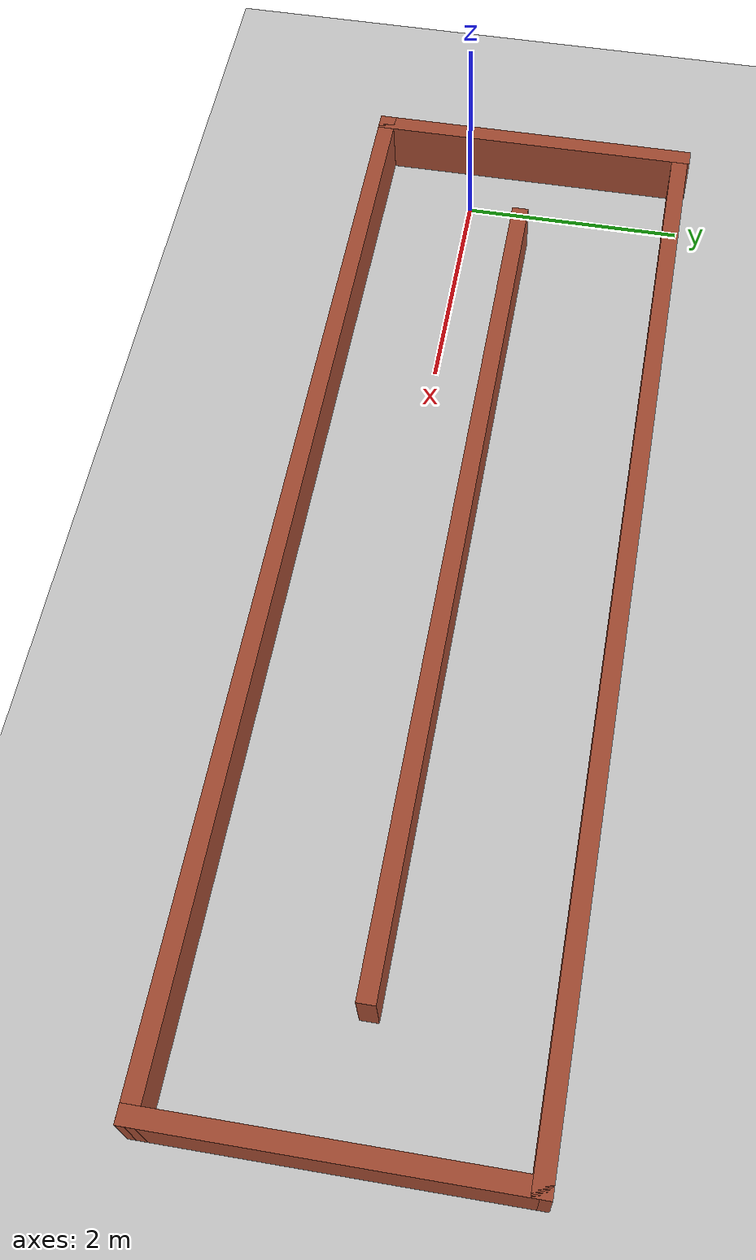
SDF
<sdf version="1.7">
 <world name="default">
  <light name="sun" type="directional">
   <pose>0 0 10 0 -0 0</pose>
   <diffuse>0.8 0.8 0.8 1</diffuse>
   <specular>0.2 0.2 0.2 1</specular>
   <attenuation>
    <range>1000</range>
    <constant>0.9</constant>
    <linear>0.01</linear>
    <quadratic>0.001</quadratic>
   </attenuation>
   <direction>-0.5 0.1 -0.9</direction>
   <spot><inner_angle>0</inner_angle><outer_angle>0</outer_angle><falloff>0</falloff></spot>
  </light>
  <model name="ground_plane">
   <static>1</static>
   <link name="link">
    <collision name="collision">
     <geometry><plane><normal>0 0 1</normal><size>100 100</size></plane></geometry>
     <surface>
      <contact><collide_bitmask>65535</collide_bitmask></contact>
      <friction><ode><mu>100</mu><mu2>50</mu2></ode></friction>
     </surface>
    </collision>
    <visual name="visual">
     <cast_shadows>0</cast_shadows>
     <geometry><plane><normal>0 0 1</normal><size>100 100</size></plane></geometry>
     <material>
      <script><uri>file://media/materials/scripts/gazebo.material</uri><name>Gazebo/Grey</name></script>
     </material>
    </visual>
   </link>
  </model>
  <gravity>0 0 -9.8</gravity>
  <magnetic_field>6e-06 2.3e-05 -4.2e-05</magnetic_field>
  <atmosphere type="adiabatic"/>
  <physics type="ode">
   <max_step_size>0.001</max_step_size>
   <real_time_factor>1</real_time_factor>
   <real_time_update_rate>1000</real_time_update_rate>
  </physics>
  <scene><ambient>0.4 0.4 0.4 1</ambient><background>0.7 0.7 0.7 1</background><shadows>1</shadows></scene>
  <spherical_coordinates>
   <surface_model>EARTH_WGS84</surface_model>
   <latitude_deg>0</latitude_deg>
   <longitude_deg>0</longitude_deg>
   <elevation>0</elevation>
   <heading_deg>0</heading_deg>
  </spherical_coordinates>
  <model name="double_corrid">
   <pose>4.22607 0.001268 0 0 -0 0</pose>
   <link name="Wall_27">
    <collision name="Wall_27_Collision">
     <geometry><box><size>2.99958 0.15 0.5</size></box></geometry>
     <pose>0 0 0.25 0 -0 0</pose>
    </collision>
    <visual name="Wall_27_Visual">
     <pose>0 0 0.25 0 -0 0</pose>
     <geometry><box><size>2.99958 0.15 0.5</size></box></geometry>
     <material>
      <script><uri>file://media/materials/scripts/gazebo.material</uri><name>Gazebo/Bricks</name></script>
      <ambient>1 1 1 1</ambient>
     </material>
     <meta><layer>0</layer></meta>
    </visual>
    <pose>4.61608 0.501755 0 0 -0 1.5708</pose>
   </link>
   <link name="Wall_28">
    <collision name="Wall_28_Collision">
     <geometry><box><size>9.53505 0.15 0.5</size></box></geometry>
     <pose>0 0 0.25 0 -0 0</pose>
    </collision>
    <visual name="Wall_28_Visual">
     <pose>0 0 0.25 0 -0 0</pose>
     <geometry><box><size>9.53505 0.15 0.5</size></box></geometry>
     <material>
      <script><uri>file://media/materials/scripts/gazebo.material</uri><name>Gazebo/Bricks</name></script>
      <ambient>1 1 1 1</ambient>
     </material>
     <meta><layer>0</layer></meta>
    </visual>
    <pose>-0.076415 1.93525 0 0 -0 3.13978</pose>
   </link>
   <link name="Wall_29">
    <collision name="Wall_29_Collision">
     <geometry><box><size>3.01749 0.15 0.5</size></box></geometry>
     <pose>0 0 0.25 0 -0 0</pose>
    </collision>
    <visual name="Wall_29_Visual">
     <pose>0 0 0.25 0 -0 0</pose>
     <geometry><box><size>3.01749 0.15 0.5</size></box></geometry>
     <material>
      <script><uri>file://media/materials/scripts/gazebo.material</uri><name>Gazebo/Bricks</name></script>
      <ambient>1 1 1 1</ambient>
     </material>
     <meta><layer>0</layer></meta>
    </visual>
    <pose>-4.76891 0.5275 0 0 -0 -1.5708</pose>
   </link>
   <link name="Wall_31">
    <collision name="Wall_31_Collision">
     <geometry><box><size>7.5 0.15 0.5</size></box></geometry>
     <pose>0 0 0.25 0 -0 0</pose>
    </collision>
    <visual name="Wall_31_Visual">
     <pose>0 0 0.25 0 -0 0</pose>
     <geometry><box><size>7.5 0.15 0.5</size></box></geometry>
     <material>
      <script><uri>file://media/materials/scripts/gazebo.material</uri><name>Gazebo/Bricks</name></script>
      <ambient>1 1 1 1</ambient>
     </material>
     <meta><layer>0</layer></meta>
    </visual>
    <pose>-0.131924 0.528755 0 0 -0 0</pose>
   </link>
   <link name="Wall_33">
    <collision name="Wall_33_Collision">
     <geometry><box><size>9.53505 0.15 0.5</size></box></geometry>
     <pose>0 0 0.25 0 -0 0</pose>
    </collision>
    <visual name="Wall_33_Visual">
     <pose>0 0 0.25 0 -0 0</pose>
     <geometry><box><size>9.53505 0.15 0.5</size></box></geometry>
     <material>
      <script><uri>file://media/materials/scripts/gazebo.material</uri><name>Gazebo/Bricks</name></script>
      <ambient>1 1 1 1</ambient>
     </material>
     <meta><layer>0</layer></meta>
    </visual>
    <pose>-0.076424 -0.914745 0 0 -0 -0.001811</pose>
   </link>
   <static>1</static>
  </model>
 </world>
</sdf>
